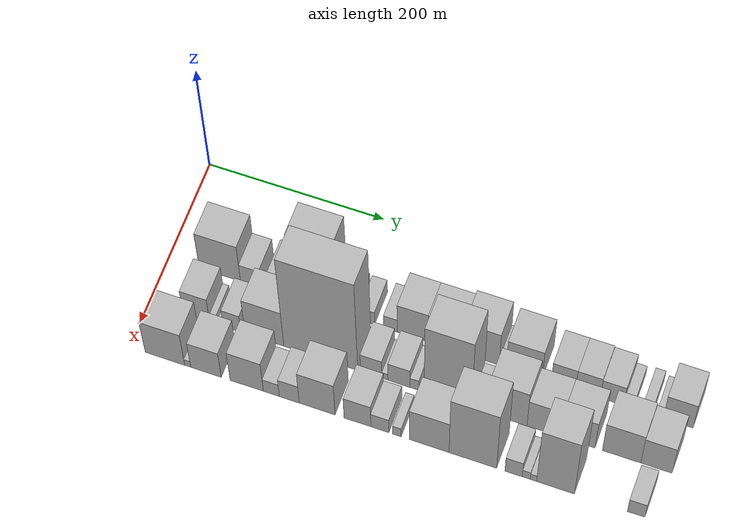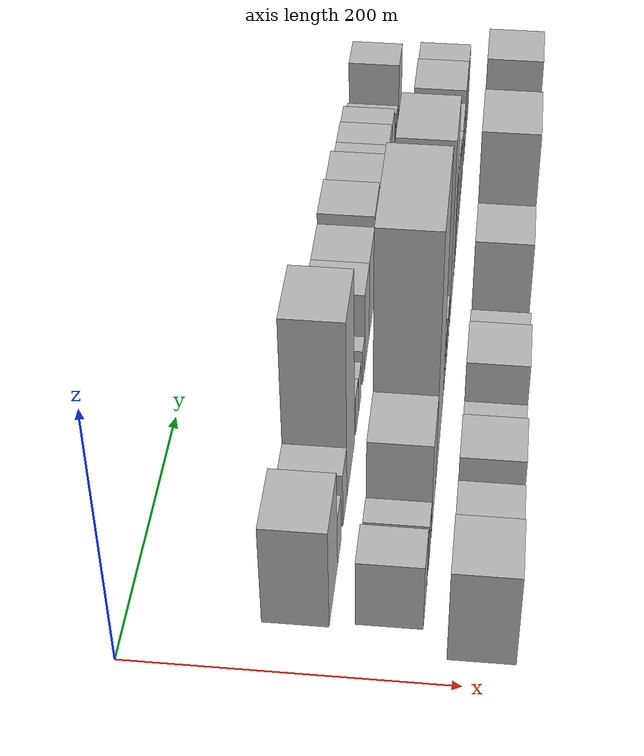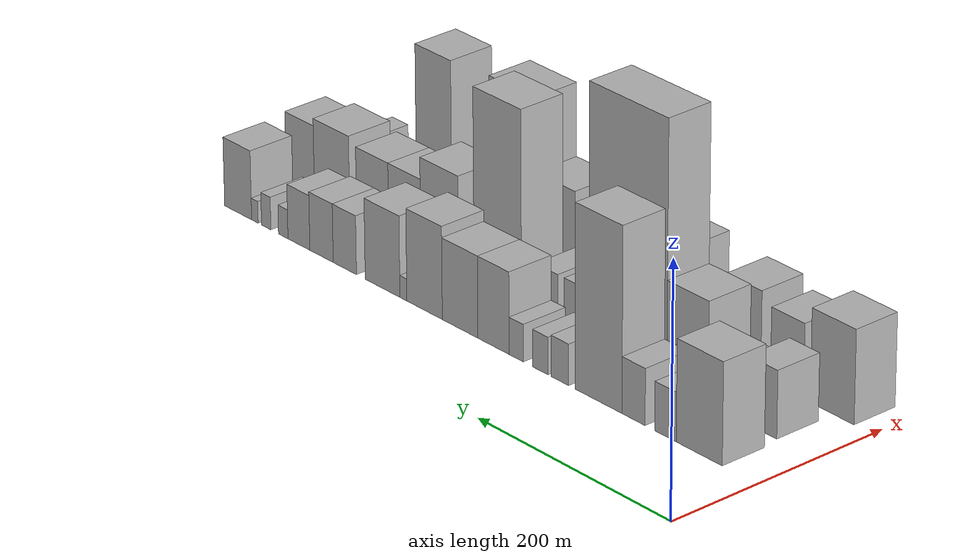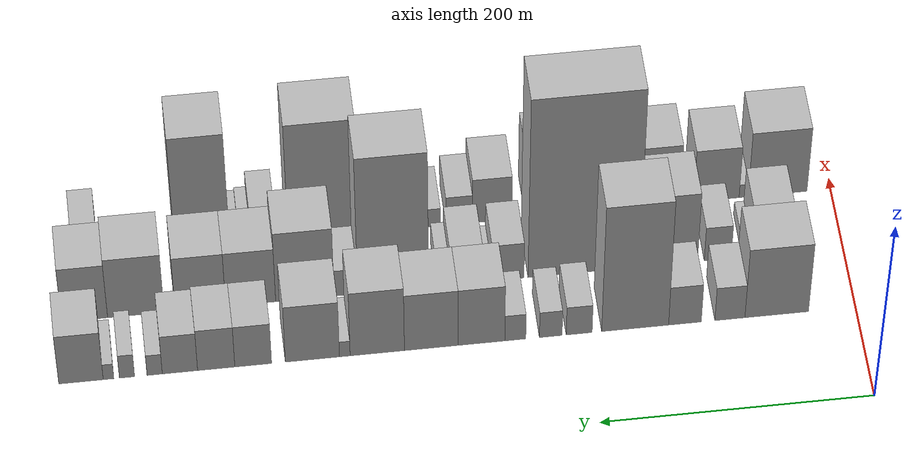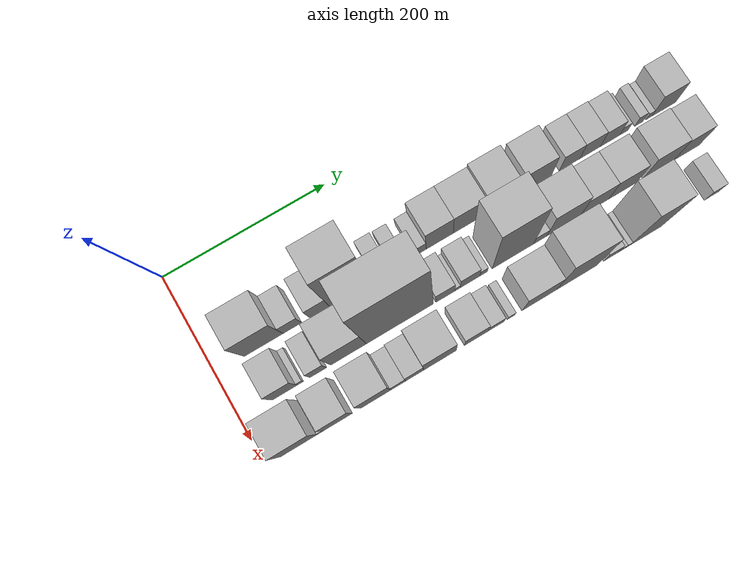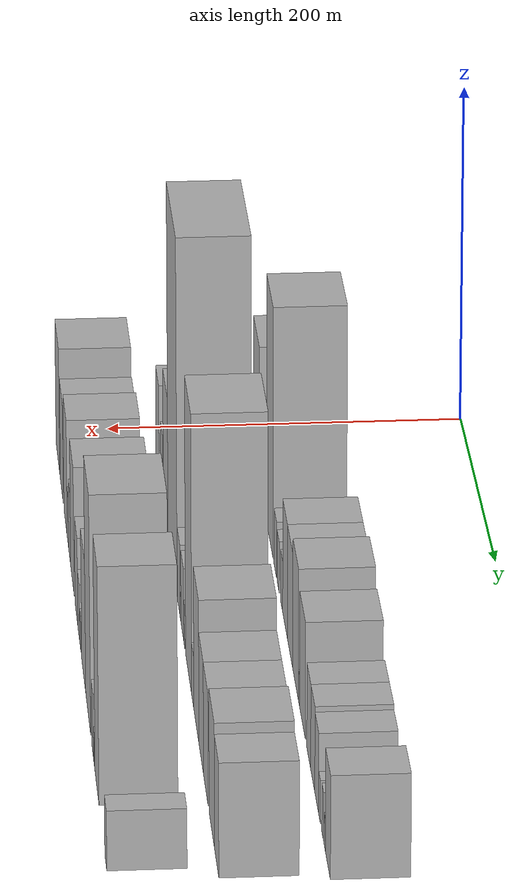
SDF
<sdf version="1.6">
 <world name="default">
  <model name="building_18">
   <static>1</static>
   <pose>100.0000 58.6374 0 0.000000 0.000000 0.000000</pose>
   <link name="link">
    <pose>0 0 40.50 0 0 0</pose>
    <collision name="collision"><geometry><box><size>40.0000 46.9235 81.0000</size></box></geometry></collision>
    <visual name="visual">
     <cast_shadows>0</cast_shadows>
     <geometry><box><size>40.0000 46.9235 81.0000</size></box></geometry>
     <material>
      <script>
       <uri>model://HANNAS_wall/materials/scripts</uri>
       <uri>model://HANNAS_wall/materials/textures</uri>
       <name>vrc/HANNAS_wall</name>
      </script>
     </material>
    </visual>
   </link>
  </model>
  <model name="building_19">
   <static>1</static>
   <pose>100.0000 93.1866 0 0.000000 0.000000 0.000000</pose>
   <link name="link">
    <pose>0 0 19.50 0 0 0</pose>
    <collision name="collision"><geometry><box><size>40.0000 22.1749 39.0000</size></box></geometry></collision>
    <visual name="visual">
     <cast_shadows>0</cast_shadows>
     <geometry><box><size>40.0000 22.1749 39.0000</size></box></geometry>
     <material>
      <script>
       <uri>model://HANNAS_wall/materials/scripts</uri>
       <uri>model://HANNAS_wall/materials/textures</uri>
       <name>vrc/HANNAS_wall</name>
      </script>
     </material>
    </visual>
   </link>
  </model>
  <model name="building_20">
   <static>1</static>
   <pose>100.0000 126.3091 0 0.000000 0.000000 0.000000</pose>
   <link name="link">
    <pose>0 0 22.50 0 0 0</pose>
    <collision name="collision"><geometry><box><size>40.0000 24.0701 45.0000</size></box></geometry></collision>
    <visual name="visual">
     <cast_shadows>0</cast_shadows>
     <geometry><box><size>40.0000 24.0701 45.0000</size></box></geometry>
     <material>
      <script>
       <uri>model://HANNAS_wall/materials/scripts</uri>
       <uri>model://HANNAS_wall/materials/textures</uri>
       <name>vrc/HANNAS_wall</name>
      </script>
     </material>
    </visual>
   </link>
  </model>
  <model name="building_21">
   <static>1</static>
   <pose>100.0000 162.9610 0 0.000000 0.000000 0.000000</pose>
   <link name="link">
    <pose>0 0 73.50 0 0 0</pose>
    <collision name="collision"><geometry><box><size>40.0000 49.2336 147.0000</size></box></geometry></collision>
    <visual name="visual">
     <cast_shadows>0</cast_shadows>
     <geometry><box><size>40.0000 49.2336 147.0000</size></box></geometry>
     <material>
      <script>
       <uri>model://HANNAS_wall/materials/scripts</uri>
       <uri>model://HANNAS_wall/materials/textures</uri>
       <name>vrc/HANNAS_wall</name>
      </script>
     </material>
    </visual>
   </link>
  </model>
  <model name="building_22">
   <static>1</static>
   <pose>100.0000 204.0887 0 0.000000 0.000000 0.000000</pose>
   <link name="link">
    <pose>0 0 16.50 0 0 0</pose>
    <collision name="collision"><geometry><box><size>40.0000 19.0217 33.0000</size></box></geometry></collision>
    <visual name="visual">
     <cast_shadows>0</cast_shadows>
     <geometry><box><size>40.0000 19.0217 33.0000</size></box></geometry>
     <material>
      <script>
       <uri>model://HANNAS_wall/materials/scripts</uri>
       <uri>model://HANNAS_wall/materials/textures</uri>
       <name>vrc/HANNAS_wall</name>
      </script>
     </material>
    </visual>
   </link>
  </model>
  <model name="building_23">
   <static>1</static>
   <pose>100.0000 224.9152 0 0.000000 0.000000 0.000000</pose>
   <link name="link">
    <pose>0 0 15.00 0 0 0</pose>
    <collision name="collision"><geometry><box><size>40.0000 16.6313 30.0000</size></box></geometry></collision>
    <visual name="visual">
     <cast_shadows>0</cast_shadows>
     <geometry><box><size>40.0000 16.6313 30.0000</size></box></geometry>
     <material>
      <script>
       <uri>model://HANNAS_wall/materials/scripts</uri>
       <uri>model://HANNAS_wall/materials/textures</uri>
       <name>vrc/HANNAS_wall</name>
      </script>
     </material>
    </visual>
   </link>
  </model>
  <model name="building_24">
   <static>1</static>
   <pose>100.0000 250.9024 0 0.000000 0.000000 0.000000</pose>
   <link name="link">
    <pose>0 0 15.00 0 0 0</pose>
    <collision name="collision"><geometry><box><size>40.0000 15.3431 30.0000</size></box></geometry></collision>
    <visual name="visual">
     <cast_shadows>0</cast_shadows>
     <geometry><box><size>40.0000 15.3431 30.0000</size></box></geometry>
     <material>
      <script>
       <uri>model://HANNAS_wall/materials/scripts</uri>
       <uri>model://HANNAS_wall/materials/textures</uri>
       <name>vrc/HANNAS_wall</name>
      </script>
     </material>
    </visual>
   </link>
  </model>
  <model name="building_25">
   <static>1</static>
   <pose>100.0000 275.6220 0 0.000000 0.000000 0.000000</pose>
   <link name="link">
    <pose>0 0 33.00 0 0 0</pose>
    <collision name="collision"><geometry><box><size>40.0000 34.0961 66.0000</size></box></geometry></collision>
    <visual name="visual">
     <cast_shadows>0</cast_shadows>
     <geometry><box><size>40.0000 34.0961 66.0000</size></box></geometry>
     <material>
      <script>
       <uri>model://HANNAS_wall/materials/scripts</uri>
       <uri>model://HANNAS_wall/materials/textures</uri>
       <name>vrc/HANNAS_wall</name>
      </script>
     </material>
    </visual>
   </link>
  </model>
  <model name="building_26">
   <static>1</static>
   <pose>100.0000 312.3121 0 0.000000 0.000000 0.000000</pose>
   <link name="link">
    <pose>0 0 33.00 0 0 0</pose>
    <collision name="collision"><geometry><box><size>40.0000 39.2841 66.0000</size></box></geometry></collision>
    <visual name="visual">
     <cast_shadows>0</cast_shadows>
     <geometry><box><size>40.0000 39.2841 66.0000</size></box></geometry>
     <material>
      <script>
       <uri>model://HANNAS_wall/materials/scripts</uri>
       <uri>model://HANNAS_wall/materials/textures</uri>
       <name>vrc/HANNAS_wall</name>
      </script>
     </material>
    </visual>
   </link>
  </model>
  <model name="building_27">
   <static>1</static>
   <pose>100.0000 351.7516 0 0.000000 0.000000 0.000000</pose>
   <link name="link">
    <pose>0 0 37.50 0 0 0</pose>
    <collision name="collision"><geometry><box><size>40.0000 39.5950 75.0000</size></box></geometry></collision>
    <visual name="visual">
     <cast_shadows>0</cast_shadows>
     <geometry><box><size>40.0000 39.5950 75.0000</size></box></geometry>
     <material>
      <script>
       <uri>model://HANNAS_wall/materials/scripts</uri>
       <uri>model://HANNAS_wall/materials/textures</uri>
       <name>vrc/HANNAS_wall</name>
      </script>
     </material>
    </visual>
   </link>
  </model>
  <model name="building_28">
   <static>1</static>
   <pose>100.0000 375.4335 0 0.000000 0.000000 0.000000</pose>
   <link name="link">
    <pose>0 0 9.00 0 0 0</pose>
    <collision name="collision"><geometry><box><size>40.0000 7.7689 18.0000</size></box></geometry></collision>
    <visual name="visual">
     <cast_shadows>0</cast_shadows>
     <geometry><box><size>40.0000 7.7689 18.0000</size></box></geometry>
     <material>
      <script>
       <uri>model://HANNAS_wall/materials/scripts</uri>
       <uri>model://HANNAS_wall/materials/textures</uri>
       <name>vrc/HANNAS_wall</name>
      </script>
     </material>
    </visual>
   </link>
  </model>
  <model name="building_29">
   <static>1</static>
   <pose>100.0000 399.0089 0 0.000000 0.000000 0.000000</pose>
   <link name="link">
    <pose>0 0 33.00 0 0 0</pose>
    <collision name="collision"><geometry><box><size>40.0000 39.3817 66.0000</size></box></geometry></collision>
    <visual name="visual">
     <cast_shadows>0</cast_shadows>
     <geometry><box><size>40.0000 39.3817 66.0000</size></box></geometry>
     <material>
      <script>
       <uri>model://HANNAS_wall/materials/scripts</uri>
       <uri>model://HANNAS_wall/materials/textures</uri>
       <name>vrc/HANNAS_wall</name>
      </script>
     </material>
    </visual>
   </link>
  </model>
  <model name="building_30">
   <static>1</static>
   <pose>100.0000 442.0550 0 0.000000 0.000000 0.000000</pose>
   <link name="link">
    <pose>0 0 24.00 0 0 0</pose>
    <collision name="collision"><geometry><box><size>40.0000 26.7106 48.0000</size></box></geometry></collision>
    <visual name="visual">
     <cast_shadows>0</cast_shadows>
     <geometry><box><size>40.0000 26.7106 48.0000</size></box></geometry>
     <material>
      <script>
       <uri>model://HANNAS_wall/materials/scripts</uri>
       <uri>model://HANNAS_wall/materials/textures</uri>
       <name>vrc/HANNAS_wall</name>
      </script>
     </material>
    </visual>
   </link>
  </model>
  <model name="building_31">
   <static>1</static>
   <pose>100.0000 468.9195 0 0.000000 0.000000 0.000000</pose>
   <link name="link">
    <pose>0 0 24.00 0 0 0</pose>
    <collision name="collision"><geometry><box><size>40.0000 27.0183 48.0000</size></box></geometry></collision>
    <visual name="visual">
     <cast_shadows>0</cast_shadows>
     <geometry><box><size>40.0000 27.0183 48.0000</size></box></geometry>
     <material>
      <script>
       <uri>model://HANNAS_wall/materials/scripts</uri>
       <uri>model://HANNAS_wall/materials/textures</uri>
       <name>vrc/HANNAS_wall</name>
      </script>
     </material>
    </visual>
   </link>
  </model>
  <model name="building_32">
   <static>1</static>
   <pose>100.0000 495.2154 0 0.000000 0.000000 0.000000</pose>
   <link name="link">
    <pose>0 0 22.50 0 0 0</pose>
    <collision name="collision"><geometry><box><size>40.0000 25.5737 45.0000</size></box></geometry></collision>
    <visual name="visual">
     <cast_shadows>0</cast_shadows>
     <geometry><box><size>40.0000 25.5737 45.0000</size></box></geometry>
     <material>
      <script>
       <uri>model://HANNAS_wall/materials/scripts</uri>
       <uri>model://HANNAS_wall/materials/textures</uri>
       <name>vrc/HANNAS_wall</name>
      </script>
     </material>
    </visual>
   </link>
  </model>
  <model name="building_33">
   <static>1</static>
   <pose>100.0000 513.5255 0 0.000000 0.000000 0.000000</pose>
   <link name="link">
    <pose>0 0 12.00 0 0 0</pose>
    <collision name="collision"><geometry><box><size>40.0000 11.0465 24.0000</size></box></geometry></collision>
    <visual name="visual">
     <cast_shadows>0</cast_shadows>
     <geometry><box><size>40.0000 11.0465 24.0000</size></box></geometry>
     <material>
      <script>
       <uri>model://HANNAS_wall/materials/scripts</uri>
       <uri>model://HANNAS_wall/materials/textures</uri>
       <name>vrc/HANNAS_wall</name>
      </script>
     </material>
    </visual>
   </link>
  </model>
  <model name="building_34">
   <static>1</static>
   <pose>100.0000 533.5583 0 0.000000 0.000000 0.000000</pose>
   <link name="link">
    <pose>0 0 13.50 0 0 0</pose>
    <collision name="collision"><geometry><box><size>40.0000 11.0191 27.0000</size></box></geometry></collision>
    <visual name="visual">
     <cast_shadows>0</cast_shadows>
     <geometry><box><size>40.0000 11.0191 27.0000</size></box></geometry>
     <material>
      <script>
       <uri>model://HANNAS_wall/materials/scripts</uri>
       <uri>model://HANNAS_wall/materials/textures</uri>
       <name>vrc/HANNAS_wall</name>
      </script>
     </material>
    </visual>
   </link>
  </model>
  <model name="building_35">
   <static>1</static>
   <pose>100.0000 546.9077 0 0.000000 0.000000 0.000000</pose>
   <link name="link">
    <pose>0 0 9.00 0 0 0</pose>
    <collision name="collision"><geometry><box><size>40.0000 7.6797 18.0000</size></box></geometry></collision>
    <visual name="visual">
     <cast_shadows>0</cast_shadows>
     <geometry><box><size>40.0000 7.6797 18.0000</size></box></geometry>
     <material>
      <script>
       <uri>model://HANNAS_wall/materials/scripts</uri>
       <uri>model://HANNAS_wall/materials/textures</uri>
       <name>vrc/HANNAS_wall</name>
      </script>
     </material>
    </visual>
   </link>
  </model>
  <model name="building_36">
   <static>1</static>
   <pose>100.0000 566.8009 0 0.000000 0.000000 0.000000</pose>
   <link name="link">
    <pose>0 0 28.50 0 0 0</pose>
    <collision name="collision"><geometry><box><size>40.0000 32.1069 57.0000</size></box></geometry></collision>
    <visual name="visual">
     <cast_shadows>0</cast_shadows>
     <geometry><box><size>40.0000 32.1069 57.0000</size></box></geometry>
     <material>
      <script>
       <uri>model://HANNAS_wall/materials/scripts</uri>
       <uri>model://HANNAS_wall/materials/textures</uri>
       <name>vrc/HANNAS_wall</name>
      </script>
     </material>
    </visual>
   </link>
  </model>
  <model name="building_53">
   <static>1</static>
   <pose>155.0000 53.6636 0 0.000000 0.000000 0.000000</pose>
   <link name="link">
    <pose>0 0 27.00 0 0 0</pose>
    <collision name="collision"><geometry><box><size>40.0000 30.0741 54.0000</size></box></geometry></collision>
    <visual name="visual">
     <cast_shadows>0</cast_shadows>
     <geometry><box><size>40.0000 30.0741 54.0000</size></box></geometry>
     <material>
      <script>
       <uri>model://HANNAS_wall/materials/scripts</uri>
       <uri>model://HANNAS_wall/materials/textures</uri>
       <name>vrc/HANNAS_wall</name>
      </script>
     </material>
    </visual>
   </link>
  </model>
  <model name="building_54">
   <static>1</static>
   <pose>155.0000 72.2099 0 0.000000 0.000000 0.000000</pose>
   <link name="link">
    <pose>0 0 7.50 0 0 0</pose>
    <collision name="collision"><geometry><box><size>40.0000 7.0185 15.0000</size></box></geometry></collision>
    <visual name="visual">
     <cast_shadows>0</cast_shadows>
     <geometry><box><size>40.0000 7.0185 15.0000</size></box></geometry>
     <material>
      <script>
       <uri>model://HANNAS_wall/materials/scripts</uri>
       <uri>model://HANNAS_wall/materials/textures</uri>
       <name>vrc/HANNAS_wall</name>
      </script>
     </material>
    </visual>
   </link>
  </model>
  <model name="building_55">
   <static>1</static>
   <pose>155.0000 93.7455 0 0.000000 0.000000 0.000000</pose>
   <link name="link">
    <pose>0 0 19.50 0 0 0</pose>
    <collision name="collision"><geometry><box><size>40.0000 20.0527 39.0000</size></box></geometry></collision>
    <visual name="visual">
     <cast_shadows>0</cast_shadows>
     <geometry><box><size>40.0000 20.0527 39.0000</size></box></geometry>
     <material>
      <script>
       <uri>model://HANNAS_wall/materials/scripts</uri>
       <uri>model://HANNAS_wall/materials/textures</uri>
       <name>vrc/HANNAS_wall</name>
      </script>
     </material>
    </visual>
   </link>
  </model>
  <model name="building_56">
   <static>1</static>
   <pose>155.0000 130.4060 0 0.000000 0.000000 0.000000</pose>
   <link name="link">
    <pose>0 0 40.50 0 0 0</pose>
    <collision name="collision"><geometry><box><size>40.0000 43.2683 81.0000</size></box></geometry></collision>
    <visual name="visual">
     <cast_shadows>0</cast_shadows>
     <geometry><box><size>40.0000 43.2683 81.0000</size></box></geometry>
     <material>
      <script>
       <uri>model://HANNAS_wall/materials/scripts</uri>
       <uri>model://HANNAS_wall/materials/textures</uri>
       <name>vrc/HANNAS_wall</name>
      </script>
     </material>
    </visual>
   </link>
  </model>
  <model name="building_57">
   <static>1</static>
   <pose>155.0000 193.2940 0 0.000000 0.000000 0.000000</pose>
   <link name="link">
    <pose>0 0 103.50 0 0 0</pose>
    <collision name="collision"><geometry><box><size>40.0000 82.5079 207.0000</size></box></geometry></collision>
    <visual name="visual">
     <cast_shadows>0</cast_shadows>
     <geometry><box><size>40.0000 82.5079 207.0000</size></box></geometry>
     <material>
      <script>
       <uri>model://HANNAS_wall/materials/scripts</uri>
       <uri>model://HANNAS_wall/materials/textures</uri>
       <name>vrc/HANNAS_wall</name>
      </script>
     </material>
    </visual>
   </link>
  </model>
  <model name="building_58">
   <static>1</static>
   <pose>155.0000 249.3829 0 0.000000 0.000000 0.000000</pose>
   <link name="link">
    <pose>0 0 21.00 0 0 0</pose>
    <collision name="collision"><geometry><box><size>40.0000 23.6699 42.0000</size></box></geometry></collision>
    <visual name="visual">
     <cast_shadows>0</cast_shadows>
     <geometry><box><size>40.0000 23.6699 42.0000</size></box></geometry>
     <material>
      <script>
       <uri>model://HANNAS_wall/materials/scripts</uri>
       <uri>model://HANNAS_wall/materials/textures</uri>
       <name>vrc/HANNAS_wall</name>
      </script>
     </material>
    </visual>
   </link>
  </model>
  <model name="building_59">
   <static>1</static>
   <pose>155.0000 264.6367 0 0.000000 0.000000 0.000000</pose>
   <link name="link">
    <pose>0 0 7.50 0 0 0</pose>
    <collision name="collision"><geometry><box><size>40.0000 6.8378 15.0000</size></box></geometry></collision>
    <visual name="visual">
     <cast_shadows>0</cast_shadows>
     <geometry><box><size>40.0000 6.8378 15.0000</size></box></geometry>
     <material>
      <script>
       <uri>model://HANNAS_wall/materials/scripts</uri>
       <uri>model://HANNAS_wall/materials/textures</uri>
       <name>vrc/HANNAS_wall</name>
      </script>
     </material>
    </visual>
   </link>
  </model>
  <model name="building_60">
   <static>1</static>
   <pose>155.0000 280.1851 0 0.000000 0.000000 0.000000</pose>
   <link name="link">
    <pose>0 0 21.00 0 0 0</pose>
    <collision name="collision"><geometry><box><size>40.0000 24.2589 42.0000</size></box></geometry></collision>
    <visual name="visual">
     <cast_shadows>0</cast_shadows>
     <geometry><box><size>40.0000 24.2589 42.0000</size></box></geometry>
     <material>
      <script>
       <uri>model://HANNAS_wall/materials/scripts</uri>
       <uri>model://HANNAS_wall/materials/textures</uri>
       <name>vrc/HANNAS_wall</name>
      </script>
     </material>
    </visual>
   </link>
  </model>
  <model name="building_61">
   <static>1</static>
   <pose>155.0000 297.1424 0 0.000000 0.000000 0.000000</pose>
   <link name="link">
    <pose>0 0 12.00 0 0 0</pose>
    <collision name="collision"><geometry><box><size>40.0000 9.6558 24.0000</size></box></geometry></collision>
    <visual name="visual">
     <cast_shadows>0</cast_shadows>
     <geometry><box><size>40.0000 9.6558 24.0000</size></box></geometry>
     <material>
      <script>
       <uri>model://HANNAS_wall/materials/scripts</uri>
       <uri>model://HANNAS_wall/materials/textures</uri>
       <name>vrc/HANNAS_wall</name>
      </script>
     </material>
    </visual>
   </link>
  </model>
  <model name="building_62">
   <static>1</static>
   <pose>155.0000 334.1585 0 0.000000 0.000000 0.000000</pose>
   <link name="link">
    <pose>0 0 79.50 0 0 0</pose>
    <collision name="collision"><geometry><box><size>40.0000 52.3763 159.0000</size></box></geometry></collision>
    <visual name="visual">
     <cast_shadows>0</cast_shadows>
     <geometry><box><size>40.0000 52.3763 159.0000</size></box></geometry>
     <material>
      <script>
       <uri>model://HANNAS_wall/materials/scripts</uri>
       <uri>model://HANNAS_wall/materials/textures</uri>
       <name>vrc/HANNAS_wall</name>
      </script>
     </material>
    </visual>
   </link>
  </model>
  <model name="building_63">
   <static>1</static>
   <pose>155.0000 368.9977 0 0.000000 0.000000 0.000000</pose>
   <link name="link">
    <pose>0 0 15.00 0 0 0</pose>
    <collision name="collision"><geometry><box><size>40.0000 17.3022 30.0000</size></box></geometry></collision>
    <visual name="visual">
     <cast_shadows>0</cast_shadows>
     <geometry><box><size>40.0000 17.3022 30.0000</size></box></geometry>
     <material>
      <script>
       <uri>model://HANNAS_wall/materials/scripts</uri>
       <uri>model://HANNAS_wall/materials/textures</uri>
       <name>vrc/HANNAS_wall</name>
      </script>
     </material>
    </visual>
   </link>
  </model>
  <model name="building_64">
   <static>1</static>
   <pose>155.0000 399.0926 0 0.000000 0.000000 0.000000</pose>
   <link name="link">
    <pose>0 0 40.50 0 0 0</pose>
    <collision name="collision"><geometry><box><size>40.0000 42.8878 81.0000</size></box></geometry></collision>
    <visual name="visual">
     <cast_shadows>0</cast_shadows>
     <geometry><box><size>40.0000 42.8878 81.0000</size></box></geometry>
     <material>
      <script>
       <uri>model://HANNAS_wall/materials/scripts</uri>
       <uri>model://HANNAS_wall/materials/textures</uri>
       <name>vrc/HANNAS_wall</name>
      </script>
     </material>
    </visual>
   </link>
  </model>
  <model name="building_65">
   <static>1</static>
   <pose>155.0000 438.8813 0 0.000000 0.000000 0.000000</pose>
   <link name="link">
    <pose>0 0 31.50 0 0 0</pose>
    <collision name="collision"><geometry><box><size>40.0000 36.6895 63.0000</size></box></geometry></collision>
    <visual name="visual">
     <cast_shadows>0</cast_shadows>
     <geometry><box><size>40.0000 36.6895 63.0000</size></box></geometry>
     <material>
      <script>
       <uri>model://HANNAS_wall/materials/scripts</uri>
       <uri>model://HANNAS_wall/materials/textures</uri>
       <name>vrc/HANNAS_wall</name>
      </script>
     </material>
    </visual>
   </link>
  </model>
  <model name="building_66">
   <static>1</static>
   <pose>155.0000 475.7495 0 0.000000 0.000000 0.000000</pose>
   <link name="link">
    <pose>0 0 31.50 0 0 0</pose>
    <collision name="collision"><geometry><box><size>40.0000 37.0470 63.0000</size></box></geometry></collision>
    <visual name="visual">
     <cast_shadows>0</cast_shadows>
     <geometry><box><size>40.0000 37.0470 63.0000</size></box></geometry>
     <material>
      <script>
       <uri>model://HANNAS_wall/materials/scripts</uri>
       <uri>model://HANNAS_wall/materials/textures</uri>
       <name>vrc/HANNAS_wall</name>
      </script>
     </material>
    </visual>
   </link>
  </model>
  <model name="building_67">
   <static>1</static>
   <pose>155.0000 522.9419 0 0.000000 0.000000 0.000000</pose>
   <link name="link">
    <pose>0 0 34.50 0 0 0</pose>
    <collision name="collision"><geometry><box><size>40.0000 41.3377 69.0000</size></box></geometry></collision>
    <visual name="visual">
     <cast_shadows>0</cast_shadows>
     <geometry><box><size>40.0000 41.3377 69.0000</size></box></geometry>
     <material>
      <script>
       <uri>model://HANNAS_wall/materials/scripts</uri>
       <uri>model://HANNAS_wall/materials/textures</uri>
       <name>vrc/HANNAS_wall</name>
      </script>
     </material>
    </visual>
   </link>
  </model>
  <model name="building_68">
   <static>1</static>
   <pose>155.0000 560.3770 0 0.000000 0.000000 0.000000</pose>
   <link name="link">
    <pose>0 0 31.50 0 0 0</pose>
    <collision name="collision"><geometry><box><size>40.0000 33.5327 63.0000</size></box></geometry></collision>
    <visual name="visual">
     <cast_shadows>0</cast_shadows>
     <geometry><box><size>40.0000 33.5327 63.0000</size></box></geometry>
     <material>
      <script>
       <uri>model://HANNAS_wall/materials/scripts</uri>
       <uri>model://HANNAS_wall/materials/textures</uri>
       <name>vrc/HANNAS_wall</name>
      </script>
     </material>
    </visual>
   </link>
  </model>
  <model name="building_87">
   <static>1</static>
   <pose>210.0000 40.2585 0 0.000000 0.000000 0.000000</pose>
   <link name="link">
    <pose>0 0 37.50 0 0 0</pose>
    <collision name="collision"><geometry><box><size>40.0000 44.3116 75.0000</size></box></geometry></collision>
    <visual name="visual">
     <cast_shadows>0</cast_shadows>
     <geometry><box><size>40.0000 44.3116 75.0000</size></box></geometry>
     <material>
      <script>
       <uri>model://HANNAS_wall/materials/scripts</uri>
       <uri>model://HANNAS_wall/materials/textures</uri>
       <name>vrc/HANNAS_wall</name>
      </script>
     </material>
    </visual>
   </link>
  </model>
  <model name="building_88">
   <static>1</static>
   <pose>210.0000 65.8153 0 0.000000 0.000000 0.000000</pose>
   <link name="link">
    <pose>0 0 7.50 0 0 0</pose>
    <collision name="collision"><geometry><box><size>40.0000 6.8019 15.0000</size></box></geometry></collision>
    <visual name="visual">
     <cast_shadows>0</cast_shadows>
     <geometry><box><size>40.0000 6.8019 15.0000</size></box></geometry>
     <material>
      <script>
       <uri>model://HANNAS_wall/materials/scripts</uri>
       <uri>model://HANNAS_wall/materials/textures</uri>
       <name>vrc/HANNAS_wall</name>
      </script>
     </material>
    </visual>
   </link>
  </model>
  <model name="building_89">
   <static>1</static>
   <pose>210.0000 86.2538 0 0.000000 0.000000 0.000000</pose>
   <link name="link">
    <pose>0 0 30.00 0 0 0</pose>
    <collision name="collision"><geometry><box><size>40.0000 34.0750 60.0000</size></box></geometry></collision>
    <visual name="visual">
     <cast_shadows>0</cast_shadows>
     <geometry><box><size>40.0000 34.0750 60.0000</size></box></geometry>
     <material>
      <script>
       <uri>model://HANNAS_wall/materials/scripts</uri>
       <uri>model://HANNAS_wall/materials/textures</uri>
       <name>vrc/HANNAS_wall</name>
      </script>
     </material>
    </visual>
   </link>
  </model>
  <model name="building_90">
   <static>1</static>
   <pose>210.0000 131.7699 0 0.000000 0.000000 0.000000</pose>
   <link name="link">
    <pose>0 0 34.50 0 0 0</pose>
    <collision name="collision"><geometry><box><size>40.0000 36.9573 69.0000</size></box></geometry></collision>
    <visual name="visual">
     <cast_shadows>0</cast_shadows>
     <geometry><box><size>40.0000 36.9573 69.0000</size></box></geometry>
     <material>
      <script>
       <uri>model://HANNAS_wall/materials/scripts</uri>
       <uri>model://HANNAS_wall/materials/textures</uri>
       <name>vrc/HANNAS_wall</name>
      </script>
     </material>
    </visual>
   </link>
  </model>
  <model name="building_91">
   <static>1</static>
   <pose>210.0000 159.0767 0 0.000000 0.000000 0.000000</pose>
   <link name="link">
    <pose>0 0 15.00 0 0 0</pose>
    <collision name="collision"><geometry><box><size>40.0000 17.6562 30.0000</size></box></geometry></collision>
    <visual name="visual">
     <cast_shadows>0</cast_shadows>
     <geometry><box><size>40.0000 17.6562 30.0000</size></box></geometry>
     <material>
      <script>
       <uri>model://HANNAS_wall/materials/scripts</uri>
       <uri>model://HANNAS_wall/materials/textures</uri>
       <name>vrc/HANNAS_wall</name>
      </script>
     </material>
    </visual>
   </link>
  </model>
  <model name="building_92">
   <static>1</static>
   <pose>210.0000 178.9421 0 0.000000 0.000000 0.000000</pose>
   <link name="link">
    <pose>0 0 21.00 0 0 0</pose>
    <collision name="collision"><geometry><box><size>40.0000 22.0746 42.0000</size></box></geometry></collision>
    <visual name="visual">
     <cast_shadows>0</cast_shadows>
     <geometry><box><size>40.0000 22.0746 42.0000</size></box></geometry>
     <material>
      <script>
       <uri>model://HANNAS_wall/materials/scripts</uri>
       <uri>model://HANNAS_wall/materials/textures</uri>
       <name>vrc/HANNAS_wall</name>
      </script>
     </material>
    </visual>
   </link>
  </model>
  <model name="building_93">
   <static>1</static>
   <pose>210.0000 209.7991 0 0.000000 0.000000 0.000000</pose>
   <link name="link">
    <pose>0 0 37.50 0 0 0</pose>
    <collision name="collision"><geometry><box><size>40.0000 39.6394 75.0000</size></box></geometry></collision>
    <visual name="visual">
     <cast_shadows>0</cast_shadows>
     <geometry><box><size>40.0000 39.6394 75.0000</size></box></geometry>
     <material>
      <script>
       <uri>model://HANNAS_wall/materials/scripts</uri>
       <uri>model://HANNAS_wall/materials/textures</uri>
       <name>vrc/HANNAS_wall</name>
      </script>
     </material>
    </visual>
   </link>
  </model>
  <model name="building_94">
   <static>1</static>
   <pose>210.0000 254.3236 0 0.000000 0.000000 0.000000</pose>
   <link name="link">
    <pose>0 0 25.50 0 0 0</pose>
    <collision name="collision"><geometry><box><size>40.0000 29.4095 51.0000</size></box></geometry></collision>
    <visual name="visual">
     <cast_shadows>0</cast_shadows>
     <geometry><box><size>40.0000 29.4095 51.0000</size></box></geometry>
     <material>
      <script>
       <uri>model://HANNAS_wall/materials/scripts</uri>
       <uri>model://HANNAS_wall/materials/textures</uri>
       <name>vrc/HANNAS_wall</name>
      </script>
     </material>
    </visual>
   </link>
  </model>
  <model name="building_95">
   <static>1</static>
   <pose>210.0000 278.9243 0 0.000000 0.000000 0.000000</pose>
   <link name="link">
    <pose>0 0 16.50 0 0 0</pose>
    <collision name="collision"><geometry><box><size>40.0000 19.7920 33.0000</size></box></geometry></collision>
    <visual name="visual">
     <cast_shadows>0</cast_shadows>
     <geometry><box><size>40.0000 19.7920 33.0000</size></box></geometry>
     <material>
      <script>
       <uri>model://HANNAS_wall/materials/scripts</uri>
       <uri>model://HANNAS_wall/materials/textures</uri>
       <name>vrc/HANNAS_wall</name>
      </script>
     </material>
    </visual>
   </link>
  </model>
  <model name="building_96">
   <static>1</static>
   <pose>210.0000 297.5550 0 0.000000 0.000000 0.000000</pose>
   <link name="link">
    <pose>0 0 10.50 0 0 0</pose>
    <collision name="collision"><geometry><box><size>40.0000 9.4694 21.0000</size></box></geometry></collision>
    <visual name="visual">
     <cast_shadows>0</cast_shadows>
     <geometry><box><size>40.0000 9.4694 21.0000</size></box></geometry>
     <material>
      <script>
       <uri>model://HANNAS_wall/materials/scripts</uri>
       <uri>model://HANNAS_wall/materials/textures</uri>
       <name>vrc/HANNAS_wall</name>
      </script>
     </material>
    </visual>
   </link>
  </model>
  <model name="building_97">
   <static>1</static>
   <pose>210.0000 332.8897 0 0.000000 0.000000 0.000000</pose>
   <link name="link">
    <pose>0 0 37.50 0 0 0</pose>
    <collision name="collision"><geometry><box><size>40.0000 43.2000 75.0000</size></box></geometry></collision>
    <visual name="visual">
     <cast_shadows>0</cast_shadows>
     <geometry><box><size>40.0000 43.2000 75.0000</size></box></geometry>
     <material>
      <script>
       <uri>model://HANNAS_wall/materials/scripts</uri>
       <uri>model://HANNAS_wall/materials/textures</uri>
       <name>vrc/HANNAS_wall</name>
      </script>
     </material>
    </visual>
   </link>
  </model>
  <model name="building_98">
   <static>1</static>
   <pose>210.0000 380.2953 0 0.000000 0.000000 0.000000</pose>
   <link name="link">
    <pose>0 0 67.50 0 0 0</pose>
    <collision name="collision"><geometry><box><size>40.0000 51.6110 135.0000</size></box></geometry></collision>
    <visual name="visual">
     <cast_shadows>0</cast_shadows>
     <geometry><box><size>40.0000 51.6110 135.0000</size></box></geometry>
     <material>
      <script>
       <uri>model://HANNAS_wall/materials/scripts</uri>
       <uri>model://HANNAS_wall/materials/textures</uri>
       <name>vrc/HANNAS_wall</name>
      </script>
     </material>
    </visual>
   </link>
  </model>
  <model name="building_99">
   <static>1</static>
   <pose>210.0000 424.4297 0 0.000000 0.000000 0.000000</pose>
   <link name="link">
    <pose>0 0 18.00 0 0 0</pose>
    <collision name="collision"><geometry><box><size>40.0000 18.6579 36.0000</size></box></geometry></collision>
    <visual name="visual">
     <cast_shadows>0</cast_shadows>
     <geometry><box><size>40.0000 18.6579 36.0000</size></box></geometry>
     <material>
      <script>
       <uri>model://HANNAS_wall/materials/scripts</uri>
       <uri>model://HANNAS_wall/materials/textures</uri>
       <name>vrc/HANNAS_wall</name>
      </script>
     </material>
    </visual>
   </link>
  </model>
  <model name="building_100">
   <static>1</static>
   <pose>210.0000 438.0928 0 0.000000 0.000000 0.000000</pose>
   <link name="link">
    <pose>0 0 9.00 0 0 0</pose>
    <collision name="collision"><geometry><box><size>40.0000 8.6682 18.0000</size></box></geometry></collision>
    <visual name="visual">
     <cast_shadows>0</cast_shadows>
     <geometry><box><size>40.0000 8.6682 18.0000</size></box></geometry>
     <material>
      <script>
       <uri>model://HANNAS_wall/materials/scripts</uri>
       <uri>model://HANNAS_wall/materials/textures</uri>
       <name>vrc/HANNAS_wall</name>
      </script>
     </material>
    </visual>
   </link>
  </model>
  <model name="building_101">
   <static>1</static>
   <pose>210.0000 445.8551 0 0.000000 0.000000 0.000000</pose>
   <link name="link">
    <pose>0 0 7.50 0 0 0</pose>
    <collision name="collision"><geometry><box><size>40.0000 6.8562 15.0000</size></box></geometry></collision>
    <visual name="visual">
     <cast_shadows>0</cast_shadows>
     <geometry><box><size>40.0000 6.8562 15.0000</size></box></geometry>
     <material>
      <script>
       <uri>model://HANNAS_wall/materials/scripts</uri>
       <uri>model://HANNAS_wall/materials/textures</uri>
       <name>vrc/HANNAS_wall</name>
      </script>
     </material>
    </visual>
   </link>
  </model>
  <model name="building_102">
   <static>1</static>
   <pose>210.0000 469.5795 0 0.000000 0.000000 0.000000</pose>
   <link name="link">
    <pose>0 0 66.00 0 0 0</pose>
    <collision name="collision"><geometry><box><size>40.0000 40.5926 132.0000</size></box></geometry></collision>
    <visual name="visual">
     <cast_shadows>0</cast_shadows>
     <geometry><box><size>40.0000 40.5926 132.0000</size></box></geometry>
     <material>
      <script>
       <uri>model://HANNAS_wall/materials/scripts</uri>
       <uri>model://HANNAS_wall/materials/textures</uri>
       <name>vrc/HANNAS_wall</name>
      </script>
     </material>
    </visual>
   </link>
  </model>
  <model name="building_103">
   <static>1</static>
   <pose>210.0000 555.8929 0 0.000000 0.000000 0.000000</pose>
   <link name="link">
    <pose>0 0 16.50 0 0 0</pose>
    <collision name="collision"><geometry><box><size>40.0000 18.6781 33.0000</size></box></geometry></collision>
    <visual name="visual">
     <cast_shadows>0</cast_shadows>
     <geometry><box><size>40.0000 18.6781 33.0000</size></box></geometry>
     <material>
      <script>
       <uri>model://HANNAS_wall/materials/scripts</uri>
       <uri>model://HANNAS_wall/materials/textures</uri>
       <name>vrc/HANNAS_wall</name>
      </script>
     </material>
    </visual>
   </link>
  </model>
 </world>
</sdf>
